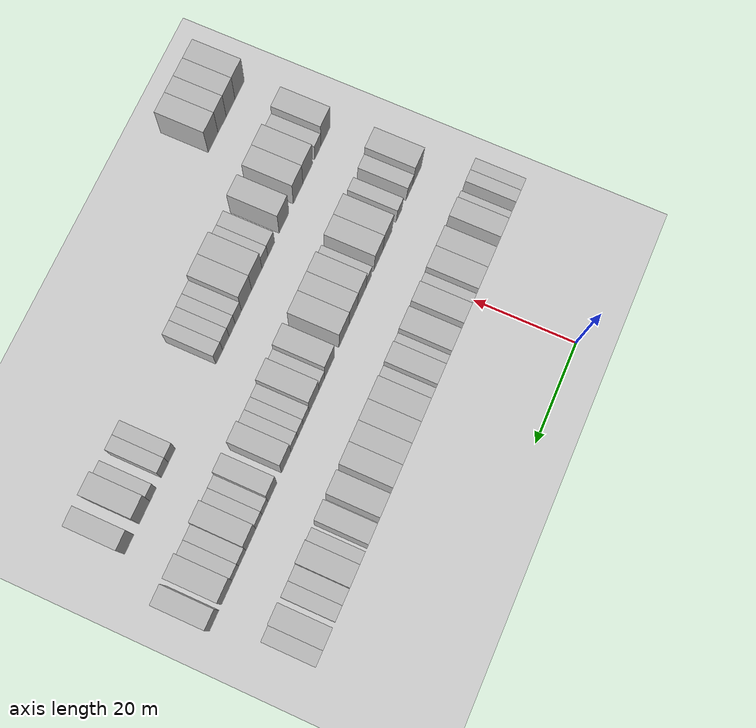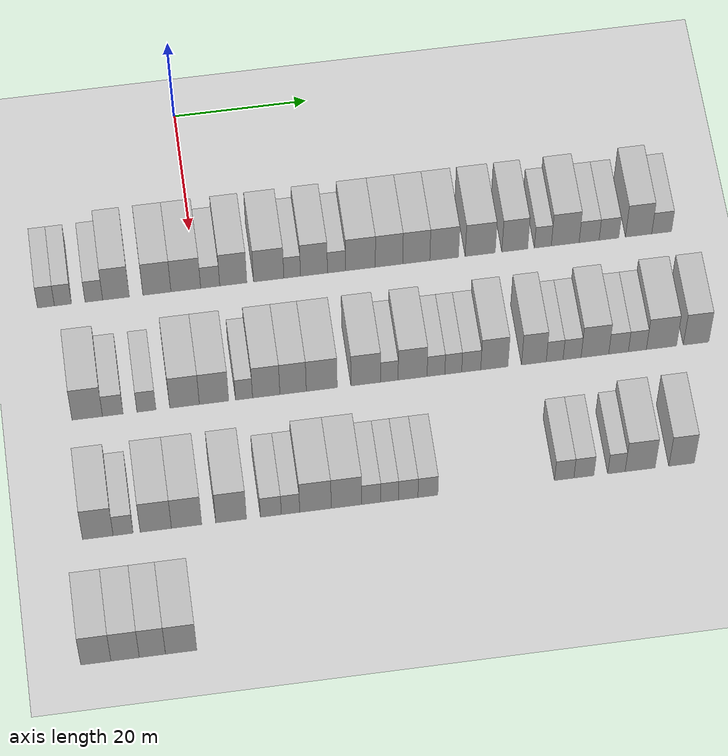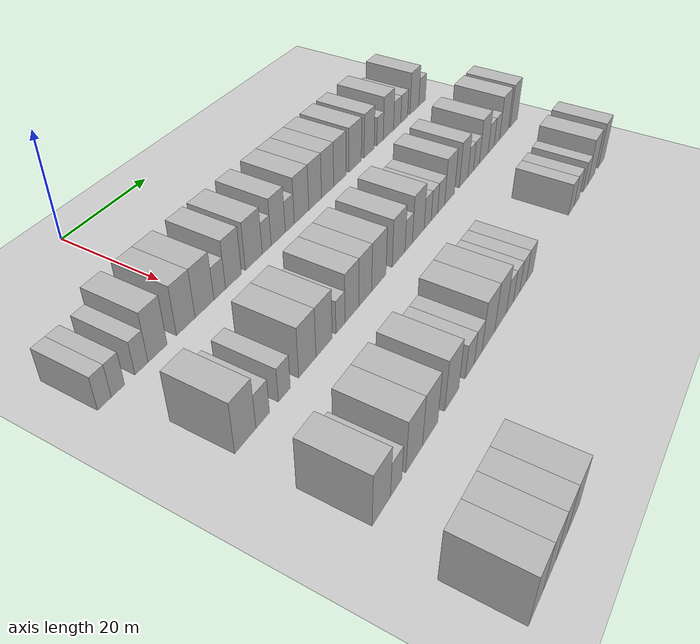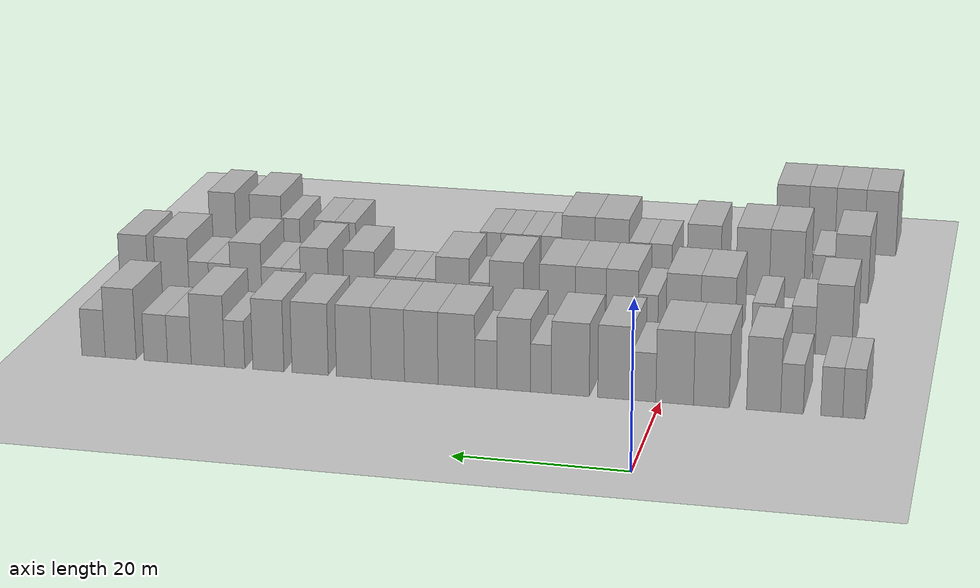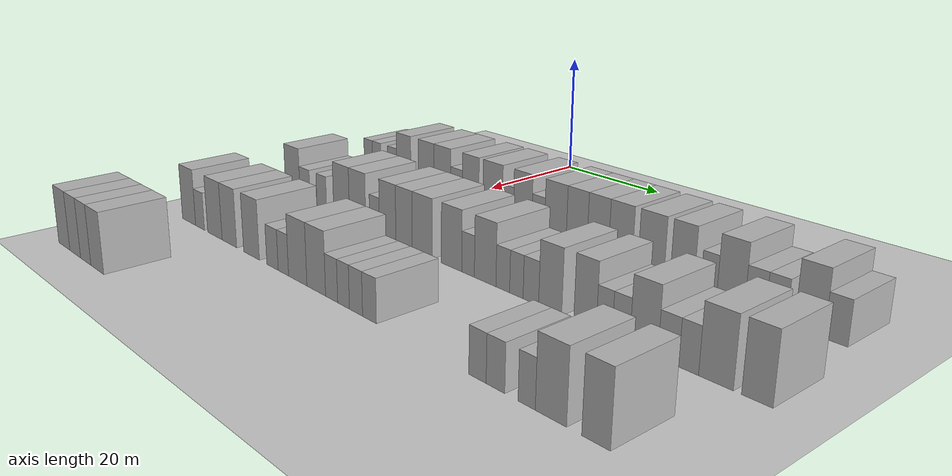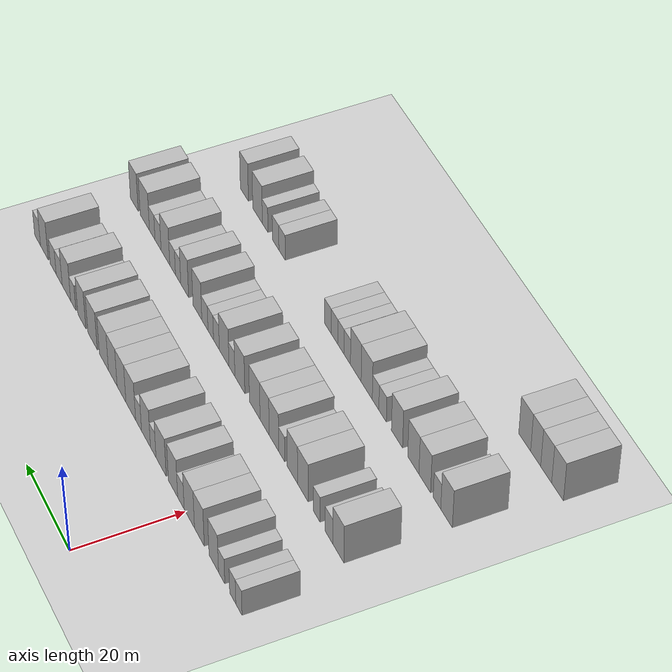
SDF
<sdf version="1.6">
 <world name="default">
  <include><name>ground_plane_1</name><uri>model://HANNAS_ground_plane</uri></include>
  <model name="building_80">
   <static>1</static>
   <pose>25.0000 -22.1949 0 0.000000 0.000000 0.000000</pose>
   <link name="link">
    <pose>0 0 3.00 0 0 0</pose>
    <collision name="collision"><geometry><box><size>10.0000 2.4945 6.0000</size></box></geometry></collision>
    <visual name="visual">
     <cast_shadows>0</cast_shadows>
     <geometry><box><size>10.0000 2.4945 6.0000</size></box></geometry>
     <material>
      <script>
       <uri>model://HANNAS_wall/materials/scripts</uri>
       <uri>model://HANNAS_wall/materials/textures</uri>
       <name>vrc/HANNAS_wall</name>
      </script>
     </material>
    </visual>
   </link>
  </model>
  <model name="building_81">
   <static>1</static>
   <pose>25.0000 -19.7006 0 0.000000 0.000000 0.000000</pose>
   <link name="link">
    <pose>0 0 3.00 0 0 0</pose>
    <collision name="collision"><geometry><box><size>10.0000 2.4941 6.0000</size></box></geometry></collision>
    <visual name="visual">
     <cast_shadows>0</cast_shadows>
     <geometry><box><size>10.0000 2.4941 6.0000</size></box></geometry>
     <material>
      <script>
       <uri>model://HANNAS_wall/materials/scripts</uri>
       <uri>model://HANNAS_wall/materials/textures</uri>
       <name>vrc/HANNAS_wall</name>
      </script>
     </material>
    </visual>
   </link>
  </model>
  <model name="building_82">
   <static>1</static>
   <pose>25.0000 -15.1579 0 0.000000 0.000000 0.000000</pose>
   <link name="link">
    <pose>0 0 3.00 0 0 0</pose>
    <collision name="collision"><geometry><box><size>10.0000 2.5913 6.0000</size></box></geometry></collision>
    <visual name="visual">
     <cast_shadows>0</cast_shadows>
     <geometry><box><size>10.0000 2.5913 6.0000</size></box></geometry>
     <material>
      <script>
       <uri>model://HANNAS_wall/materials/scripts</uri>
       <uri>model://HANNAS_wall/materials/textures</uri>
       <name>vrc/HANNAS_wall</name>
      </script>
     </material>
    </visual>
   </link>
  </model>
  <model name="building_83">
   <static>1</static>
   <pose>25.0000 -11.9035 0 0.000000 0.000000 0.000000</pose>
   <link name="link">
    <pose>0 0 4.50 0 0 0</pose>
    <collision name="collision"><geometry><box><size>10.0000 3.9176 9.0000</size></box></geometry></collision>
    <visual name="visual">
     <cast_shadows>0</cast_shadows>
     <geometry><box><size>10.0000 3.9176 9.0000</size></box></geometry>
     <material>
      <script>
       <uri>model://HANNAS_wall/materials/scripts</uri>
       <uri>model://HANNAS_wall/materials/textures</uri>
       <name>vrc/HANNAS_wall</name>
      </script>
     </material>
    </visual>
   </link>
  </model>
  <model name="building_84">
   <static>1</static>
   <pose>25.0000 -5.8807 0 0.000000 0.000000 0.000000</pose>
   <link name="link">
    <pose>0 0 4.50 0 0 0</pose>
    <collision name="collision"><geometry><box><size>10.0000 4.1279 9.0000</size></box></geometry></collision>
    <visual name="visual">
     <cast_shadows>0</cast_shadows>
     <geometry><box><size>10.0000 4.1279 9.0000</size></box></geometry>
     <material>
      <script>
       <uri>model://HANNAS_wall/materials/scripts</uri>
       <uri>model://HANNAS_wall/materials/textures</uri>
       <name>vrc/HANNAS_wall</name>
      </script>
     </material>
    </visual>
   </link>
  </model>
  <model name="building_85">
   <static>1</static>
   <pose>25.0000 -1.6255 0 0.000000 0.000000 0.000000</pose>
   <link name="link">
    <pose>0 0 4.50 0 0 0</pose>
    <collision name="collision"><geometry><box><size>10.0000 4.3826 9.0000</size></box></geometry></collision>
    <visual name="visual">
     <cast_shadows>0</cast_shadows>
     <geometry><box><size>10.0000 4.3826 9.0000</size></box></geometry>
     <material>
      <script>
       <uri>model://HANNAS_wall/materials/scripts</uri>
       <uri>model://HANNAS_wall/materials/textures</uri>
       <name>vrc/HANNAS_wall</name>
      </script>
     </material>
    </visual>
   </link>
  </model>
  <model name="building_86">
   <static>1</static>
   <pose>25.0000 1.9750 0 0.000000 0.000000 0.000000</pose>
   <link name="link">
    <pose>0 0 3.00 0 0 0</pose>
    <collision name="collision"><geometry><box><size>10.0000 2.8184 6.0000</size></box></geometry></collision>
    <visual name="visual">
     <cast_shadows>0</cast_shadows>
     <geometry><box><size>10.0000 2.8184 6.0000</size></box></geometry>
     <material>
      <script>
       <uri>model://HANNAS_wall/materials/scripts</uri>
       <uri>model://HANNAS_wall/materials/textures</uri>
       <name>vrc/HANNAS_wall</name>
      </script>
     </material>
    </visual>
   </link>
  </model>
  <model name="building_87">
   <static>1</static>
   <pose>25.0000 5.3856 0 0.000000 0.000000 0.000000</pose>
   <link name="link">
    <pose>0 0 4.50 0 0 0</pose>
    <collision name="collision"><geometry><box><size>10.0000 4.0027 9.0000</size></box></geometry></collision>
    <visual name="visual">
     <cast_shadows>0</cast_shadows>
     <geometry><box><size>10.0000 4.0027 9.0000</size></box></geometry>
     <material>
      <script>
       <uri>model://HANNAS_wall/materials/scripts</uri>
       <uri>model://HANNAS_wall/materials/textures</uri>
       <name>vrc/HANNAS_wall</name>
      </script>
     </material>
    </visual>
   </link>
  </model>
  <model name="building_88">
   <static>1</static>
   <pose>25.0000 10.6264 0 0.000000 0.000000 0.000000</pose>
   <link name="link">
    <pose>0 0 4.50 0 0 0</pose>
    <collision name="collision"><geometry><box><size>10.0000 4.4790 9.0000</size></box></geometry></collision>
    <visual name="visual">
     <cast_shadows>0</cast_shadows>
     <geometry><box><size>10.0000 4.4790 9.0000</size></box></geometry>
     <material>
      <script>
       <uri>model://HANNAS_wall/materials/scripts</uri>
       <uri>model://HANNAS_wall/materials/textures</uri>
       <name>vrc/HANNAS_wall</name>
      </script>
     </material>
    </visual>
   </link>
  </model>
  <model name="building_89">
   <static>1</static>
   <pose>25.0000 14.0957 0 0.000000 0.000000 0.000000</pose>
   <link name="link">
    <pose>0 0 3.00 0 0 0</pose>
    <collision name="collision"><geometry><box><size>10.0000 2.4597 6.0000</size></box></geometry></collision>
    <visual name="visual">
     <cast_shadows>0</cast_shadows>
     <geometry><box><size>10.0000 2.4597 6.0000</size></box></geometry>
     <material>
      <script>
       <uri>model://HANNAS_wall/materials/scripts</uri>
       <uri>model://HANNAS_wall/materials/textures</uri>
       <name>vrc/HANNAS_wall</name>
      </script>
     </material>
    </visual>
   </link>
  </model>
  <model name="building_90">
   <static>1</static>
   <pose>25.0000 17.3226 0 0.000000 0.000000 0.000000</pose>
   <link name="link">
    <pose>0 0 4.50 0 0 0</pose>
    <collision name="collision"><geometry><box><size>10.0000 3.9941 9.0000</size></box></geometry></collision>
    <visual name="visual">
     <cast_shadows>0</cast_shadows>
     <geometry><box><size>10.0000 3.9941 9.0000</size></box></geometry>
     <material>
      <script>
       <uri>model://HANNAS_wall/materials/scripts</uri>
       <uri>model://HANNAS_wall/materials/textures</uri>
       <name>vrc/HANNAS_wall</name>
      </script>
     </material>
    </visual>
   </link>
  </model>
  <model name="building_91">
   <static>1</static>
   <pose>25.0000 20.6604 0 0.000000 0.000000 0.000000</pose>
   <link name="link">
    <pose>0 0 3.00 0 0 0</pose>
    <collision name="collision"><geometry><box><size>10.0000 2.6816 6.0000</size></box></geometry></collision>
    <visual name="visual">
     <cast_shadows>0</cast_shadows>
     <geometry><box><size>10.0000 2.6816 6.0000</size></box></geometry>
     <material>
      <script>
       <uri>model://HANNAS_wall/materials/scripts</uri>
       <uri>model://HANNAS_wall/materials/textures</uri>
       <name>vrc/HANNAS_wall</name>
      </script>
     </material>
    </visual>
   </link>
  </model>
  <model name="building_92">
   <static>1</static>
   <pose>25.0000 24.2157 0 0.000000 0.000000 0.000000</pose>
   <link name="link">
    <pose>0 0 4.50 0 0 0</pose>
    <collision name="collision"><geometry><box><size>10.0000 4.4291 9.0000</size></box></geometry></collision>
    <visual name="visual">
     <cast_shadows>0</cast_shadows>
     <geometry><box><size>10.0000 4.4291 9.0000</size></box></geometry>
     <material>
      <script>
       <uri>model://HANNAS_wall/materials/scripts</uri>
       <uri>model://HANNAS_wall/materials/textures</uri>
       <name>vrc/HANNAS_wall</name>
      </script>
     </material>
    </visual>
   </link>
  </model>
  <model name="building_93">
   <static>1</static>
   <pose>25.0000 28.4661 0 0.000000 0.000000 0.000000</pose>
   <link name="link">
    <pose>0 0 4.50 0 0 0</pose>
    <collision name="collision"><geometry><box><size>10.0000 4.0716 9.0000</size></box></geometry></collision>
    <visual name="visual">
     <cast_shadows>0</cast_shadows>
     <geometry><box><size>10.0000 4.0716 9.0000</size></box></geometry>
     <material>
      <script>
       <uri>model://HANNAS_wall/materials/scripts</uri>
       <uri>model://HANNAS_wall/materials/textures</uri>
       <name>vrc/HANNAS_wall</name>
      </script>
     </material>
    </visual>
   </link>
  </model>
  <model name="building_94">
   <static>1</static>
   <pose>25.0000 32.5150 0 0.000000 0.000000 0.000000</pose>
   <link name="link">
    <pose>0 0 4.50 0 0 0</pose>
    <collision name="collision"><geometry><box><size>10.0000 4.0262 9.0000</size></box></geometry></collision>
    <visual name="visual">
     <cast_shadows>0</cast_shadows>
     <geometry><box><size>10.0000 4.0262 9.0000</size></box></geometry>
     <material>
      <script>
       <uri>model://HANNAS_wall/materials/scripts</uri>
       <uri>model://HANNAS_wall/materials/textures</uri>
       <name>vrc/HANNAS_wall</name>
      </script>
     </material>
    </visual>
   </link>
  </model>
  <model name="building_95">
   <static>1</static>
   <pose>25.0000 36.6616 0 0.000000 0.000000 0.000000</pose>
   <link name="link">
    <pose>0 0 4.50 0 0 0</pose>
    <collision name="collision"><geometry><box><size>10.0000 4.2671 9.0000</size></box></geometry></collision>
    <visual name="visual">
     <cast_shadows>0</cast_shadows>
     <geometry><box><size>10.0000 4.2671 9.0000</size></box></geometry>
     <material>
      <script>
       <uri>model://HANNAS_wall/materials/scripts</uri>
       <uri>model://HANNAS_wall/materials/textures</uri>
       <name>vrc/HANNAS_wall</name>
      </script>
     </material>
    </visual>
   </link>
  </model>
  <model name="building_96">
   <static>1</static>
   <pose>25.0000 42.0311 0 0.000000 0.000000 0.000000</pose>
   <link name="link">
    <pose>0 0 4.50 0 0 0</pose>
    <collision name="collision"><geometry><box><size>10.0000 4.4719 9.0000</size></box></geometry></collision>
    <visual name="visual">
     <cast_shadows>0</cast_shadows>
     <geometry><box><size>10.0000 4.4719 9.0000</size></box></geometry>
     <material>
      <script>
       <uri>model://HANNAS_wall/materials/scripts</uri>
       <uri>model://HANNAS_wall/materials/textures</uri>
       <name>vrc/HANNAS_wall</name>
      </script>
     </material>
    </visual>
   </link>
  </model>
  <model name="building_97">
   <static>1</static>
   <pose>25.0000 47.1933 0 0.000000 0.000000 0.000000</pose>
   <link name="link">
    <pose>0 0 4.50 0 0 0</pose>
    <collision name="collision"><geometry><box><size>10.0000 3.8524 9.0000</size></box></geometry></collision>
    <visual name="visual">
     <cast_shadows>0</cast_shadows>
     <geometry><box><size>10.0000 3.8524 9.0000</size></box></geometry>
     <material>
      <script>
       <uri>model://HANNAS_wall/materials/scripts</uri>
       <uri>model://HANNAS_wall/materials/textures</uri>
       <name>vrc/HANNAS_wall</name>
      </script>
     </material>
    </visual>
   </link>
  </model>
  <model name="building_98">
   <static>1</static>
   <pose>25.0000 51.3858 0 0.000000 0.000000 0.000000</pose>
   <link name="link">
    <pose>0 0 3.00 0 0 0</pose>
    <collision name="collision"><geometry><box><size>10.0000 2.5326 6.0000</size></box></geometry></collision>
    <visual name="visual">
     <cast_shadows>0</cast_shadows>
     <geometry><box><size>10.0000 2.5326 6.0000</size></box></geometry>
     <material>
      <script>
       <uri>model://HANNAS_wall/materials/scripts</uri>
       <uri>model://HANNAS_wall/materials/textures</uri>
       <name>vrc/HANNAS_wall</name>
      </script>
     </material>
    </visual>
   </link>
  </model>
  <model name="building_99">
   <static>1</static>
   <pose>25.0000 54.7364 0 0.000000 0.000000 0.000000</pose>
   <link name="link">
    <pose>0 0 4.50 0 0 0</pose>
    <collision name="collision"><geometry><box><size>10.0000 4.1685 9.0000</size></box></geometry></collision>
    <visual name="visual">
     <cast_shadows>0</cast_shadows>
     <geometry><box><size>10.0000 4.1685 9.0000</size></box></geometry>
     <material>
      <script>
       <uri>model://HANNAS_wall/materials/scripts</uri>
       <uri>model://HANNAS_wall/materials/textures</uri>
       <name>vrc/HANNAS_wall</name>
      </script>
     </material>
    </visual>
   </link>
  </model>
  <model name="building_100">
   <static>1</static>
   <pose>25.0000 58.3189 0 0.000000 0.000000 0.000000</pose>
   <link name="link">
    <pose>0 0 3.00 0 0 0</pose>
    <collision name="collision"><geometry><box><size>10.0000 2.9965 6.0000</size></box></geometry></collision>
    <visual name="visual">
     <cast_shadows>0</cast_shadows>
     <geometry><box><size>10.0000 2.9965 6.0000</size></box></geometry>
     <material>
      <script>
       <uri>model://HANNAS_wall/materials/scripts</uri>
       <uri>model://HANNAS_wall/materials/textures</uri>
       <name>vrc/HANNAS_wall</name>
      </script>
     </material>
    </visual>
   </link>
  </model>
  <model name="building_101">
   <static>1</static>
   <pose>25.0000 61.2905 0 0.000000 0.000000 0.000000</pose>
   <link name="link">
    <pose>0 0 3.00 0 0 0</pose>
    <collision name="collision"><geometry><box><size>10.0000 2.9468 6.0000</size></box></geometry></collision>
    <visual name="visual">
     <cast_shadows>0</cast_shadows>
     <geometry><box><size>10.0000 2.9468 6.0000</size></box></geometry>
     <material>
      <script>
       <uri>model://HANNAS_wall/materials/scripts</uri>
       <uri>model://HANNAS_wall/materials/textures</uri>
       <name>vrc/HANNAS_wall</name>
      </script>
     </material>
    </visual>
   </link>
  </model>
  <model name="building_102">
   <static>1</static>
   <pose>25.0000 65.7381 0 0.000000 0.000000 0.000000</pose>
   <link name="link">
    <pose>0 0 4.50 0 0 0</pose>
    <collision name="collision"><geometry><box><size>10.0000 3.9484 9.0000</size></box></geometry></collision>
    <visual name="visual">
     <cast_shadows>0</cast_shadows>
     <geometry><box><size>10.0000 3.9484 9.0000</size></box></geometry>
     <material>
      <script>
       <uri>model://HANNAS_wall/materials/scripts</uri>
       <uri>model://HANNAS_wall/materials/textures</uri>
       <name>vrc/HANNAS_wall</name>
      </script>
     </material>
    </visual>
   </link>
  </model>
  <model name="building_103">
   <static>1</static>
   <pose>25.0000 69.1969 0 0.000000 0.000000 0.000000</pose>
   <link name="link">
    <pose>0 0 3.00 0 0 0</pose>
    <collision name="collision"><geometry><box><size>10.0000 2.9692 6.0000</size></box></geometry></collision>
    <visual name="visual">
     <cast_shadows>0</cast_shadows>
     <geometry><box><size>10.0000 2.9692 6.0000</size></box></geometry>
     <material>
      <script>
       <uri>model://HANNAS_wall/materials/scripts</uri>
       <uri>model://HANNAS_wall/materials/textures</uri>
       <name>vrc/HANNAS_wall</name>
      </script>
     </material>
    </visual>
   </link>
  </model>
  <model name="building_252">
   <static>1</static>
   <pose>44.0000 -18.0150 0 0.000000 0.000000 0.000000</pose>
   <link name="link">
    <pose>0 0 4.50 0 0 0</pose>
    <collision name="collision"><geometry><box><size>10.0000 4.3998 9.0000</size></box></geometry></collision>
    <visual name="visual">
     <cast_shadows>0</cast_shadows>
     <geometry><box><size>10.0000 4.3998 9.0000</size></box></geometry>
     <material>
      <script>
       <uri>model://HANNAS_wall/materials/scripts</uri>
       <uri>model://HANNAS_wall/materials/textures</uri>
       <name>vrc/HANNAS_wall</name>
      </script>
     </material>
    </visual>
   </link>
  </model>
  <model name="building_253">
   <static>1</static>
   <pose>44.0000 -14.3287 0 0.000000 0.000000 0.000000</pose>
   <link name="link">
    <pose>0 0 3.00 0 0 0</pose>
    <collision name="collision"><geometry><box><size>10.0000 2.9728 6.0000</size></box></geometry></collision>
    <visual name="visual">
     <cast_shadows>0</cast_shadows>
     <geometry><box><size>10.0000 2.9728 6.0000</size></box></geometry>
     <material>
      <script>
       <uri>model://HANNAS_wall/materials/scripts</uri>
       <uri>model://HANNAS_wall/materials/textures</uri>
       <name>vrc/HANNAS_wall</name>
      </script>
     </material>
    </visual>
   </link>
  </model>
  <model name="building_254">
   <static>1</static>
   <pose>44.0000 -9.4655 0 0.000000 0.000000 0.000000</pose>
   <link name="link">
    <pose>0 0 3.00 0 0 0</pose>
    <collision name="collision"><geometry><box><size>10.0000 2.7535 6.0000</size></box></geometry></collision>
    <visual name="visual">
     <cast_shadows>0</cast_shadows>
     <geometry><box><size>10.0000 2.7535 6.0000</size></box></geometry>
     <material>
      <script>
       <uri>model://HANNAS_wall/materials/scripts</uri>
       <uri>model://HANNAS_wall/materials/textures</uri>
       <name>vrc/HANNAS_wall</name>
      </script>
     </material>
    </visual>
   </link>
  </model>
  <model name="building_255">
   <static>1</static>
   <pose>44.0000 -3.9467 0 0.000000 0.000000 0.000000</pose>
   <link name="link">
    <pose>0 0 4.50 0 0 0</pose>
    <collision name="collision"><geometry><box><size>10.0000 4.2841 9.0000</size></box></geometry></collision>
    <visual name="visual">
     <cast_shadows>0</cast_shadows>
     <geometry><box><size>10.0000 4.2841 9.0000</size></box></geometry>
     <material>
      <script>
       <uri>model://HANNAS_wall/materials/scripts</uri>
       <uri>model://HANNAS_wall/materials/textures</uri>
       <name>vrc/HANNAS_wall</name>
      </script>
     </material>
    </visual>
   </link>
  </model>
  <model name="building_256">
   <static>1</static>
   <pose>44.0000 0.3203 0 0.000000 0.000000 0.000000</pose>
   <link name="link">
    <pose>0 0 4.50 0 0 0</pose>
    <collision name="collision"><geometry><box><size>10.0000 4.2499 9.0000</size></box></geometry></collision>
    <visual name="visual">
     <cast_shadows>0</cast_shadows>
     <geometry><box><size>10.0000 4.2499 9.0000</size></box></geometry>
     <material>
      <script>
       <uri>model://HANNAS_wall/materials/scripts</uri>
       <uri>model://HANNAS_wall/materials/textures</uri>
       <name>vrc/HANNAS_wall</name>
      </script>
     </material>
    </visual>
   </link>
  </model>
  <model name="building_257">
   <static>1</static>
   <pose>44.0000 4.6780 0 0.000000 0.000000 0.000000</pose>
   <link name="link">
    <pose>0 0 3.00 0 0 0</pose>
    <collision name="collision"><geometry><box><size>10.0000 2.4655 6.0000</size></box></geometry></collision>
    <visual name="visual">
     <cast_shadows>0</cast_shadows>
     <geometry><box><size>10.0000 2.4655 6.0000</size></box></geometry>
     <material>
      <script>
       <uri>model://HANNAS_wall/materials/scripts</uri>
       <uri>model://HANNAS_wall/materials/textures</uri>
       <name>vrc/HANNAS_wall</name>
      </script>
     </material>
    </visual>
   </link>
  </model>
  <model name="building_258">
   <static>1</static>
   <pose>44.0000 7.8958 0 0.000000 0.000000 0.000000</pose>
   <link name="link">
    <pose>0 0 4.50 0 0 0</pose>
    <collision name="collision"><geometry><box><size>10.0000 3.9700 9.0000</size></box></geometry></collision>
    <visual name="visual">
     <cast_shadows>0</cast_shadows>
     <geometry><box><size>10.0000 3.9700 9.0000</size></box></geometry>
     <material>
      <script>
       <uri>model://HANNAS_wall/materials/scripts</uri>
       <uri>model://HANNAS_wall/materials/textures</uri>
       <name>vrc/HANNAS_wall</name>
      </script>
     </material>
    </visual>
   </link>
  </model>
  <model name="building_259">
   <static>1</static>
   <pose>44.0000 11.8018 0 0.000000 0.000000 0.000000</pose>
   <link name="link">
    <pose>0 0 4.50 0 0 0</pose>
    <collision name="collision"><geometry><box><size>10.0000 3.8419 9.0000</size></box></geometry></collision>
    <visual name="visual">
     <cast_shadows>0</cast_shadows>
     <geometry><box><size>10.0000 3.8419 9.0000</size></box></geometry>
     <material>
      <script>
       <uri>model://HANNAS_wall/materials/scripts</uri>
       <uri>model://HANNAS_wall/materials/textures</uri>
       <name>vrc/HANNAS_wall</name>
      </script>
     </material>
    </visual>
   </link>
  </model>
  <model name="building_260">
   <static>1</static>
   <pose>44.0000 15.9686 0 0.000000 0.000000 0.000000</pose>
   <link name="link">
    <pose>0 0 4.50 0 0 0</pose>
    <collision name="collision"><geometry><box><size>10.0000 4.4917 9.0000</size></box></geometry></collision>
    <visual name="visual">
     <cast_shadows>0</cast_shadows>
     <geometry><box><size>10.0000 4.4917 9.0000</size></box></geometry>
     <material>
      <script>
       <uri>model://HANNAS_wall/materials/scripts</uri>
       <uri>model://HANNAS_wall/materials/textures</uri>
       <name>vrc/HANNAS_wall</name>
      </script>
     </material>
    </visual>
   </link>
  </model>
  <model name="building_261">
   <static>1</static>
   <pose>44.0000 22.3629 0 0.000000 0.000000 0.000000</pose>
   <link name="link">
    <pose>0 0 4.50 0 0 0</pose>
    <collision name="collision"><geometry><box><size>10.0000 4.2969 9.0000</size></box></geometry></collision>
    <visual name="visual">
     <cast_shadows>0</cast_shadows>
     <geometry><box><size>10.0000 4.2969 9.0000</size></box></geometry>
     <material>
      <script>
       <uri>model://HANNAS_wall/materials/scripts</uri>
       <uri>model://HANNAS_wall/materials/textures</uri>
       <name>vrc/HANNAS_wall</name>
      </script>
     </material>
    </visual>
   </link>
  </model>
  <model name="building_262">
   <static>1</static>
   <pose>44.0000 25.8017 0 0.000000 0.000000 0.000000</pose>
   <link name="link">
    <pose>0 0 3.00 0 0 0</pose>
    <collision name="collision"><geometry><box><size>10.0000 2.5808 6.0000</size></box></geometry></collision>
    <visual name="visual">
     <cast_shadows>0</cast_shadows>
     <geometry><box><size>10.0000 2.5808 6.0000</size></box></geometry>
     <material>
      <script>
       <uri>model://HANNAS_wall/materials/scripts</uri>
       <uri>model://HANNAS_wall/materials/textures</uri>
       <name>vrc/HANNAS_wall</name>
      </script>
     </material>
    </visual>
   </link>
  </model>
  <model name="building_263">
   <static>1</static>
   <pose>44.0000 29.2100 0 0.000000 0.000000 0.000000</pose>
   <link name="link">
    <pose>0 0 4.50 0 0 0</pose>
    <collision name="collision"><geometry><box><size>10.0000 4.2358 9.0000</size></box></geometry></collision>
    <visual name="visual">
     <cast_shadows>0</cast_shadows>
     <geometry><box><size>10.0000 4.2358 9.0000</size></box></geometry>
     <material>
      <script>
       <uri>model://HANNAS_wall/materials/scripts</uri>
       <uri>model://HANNAS_wall/materials/textures</uri>
       <name>vrc/HANNAS_wall</name>
      </script>
     </material>
    </visual>
   </link>
  </model>
  <model name="building_264">
   <static>1</static>
   <pose>44.0000 32.6251 0 0.000000 0.000000 0.000000</pose>
   <link name="link">
    <pose>0 0 3.00 0 0 0</pose>
    <collision name="collision"><geometry><box><size>10.0000 2.5943 6.0000</size></box></geometry></collision>
    <visual name="visual">
     <cast_shadows>0</cast_shadows>
     <geometry><box><size>10.0000 2.5943 6.0000</size></box></geometry>
     <material>
      <script>
       <uri>model://HANNAS_wall/materials/scripts</uri>
       <uri>model://HANNAS_wall/materials/textures</uri>
       <name>vrc/HANNAS_wall</name>
      </script>
     </material>
    </visual>
   </link>
  </model>
  <model name="building_265">
   <static>1</static>
   <pose>44.0000 35.1582 0 0.000000 0.000000 0.000000</pose>
   <link name="link">
    <pose>0 0 3.00 0 0 0</pose>
    <collision name="collision"><geometry><box><size>10.0000 2.4719 6.0000</size></box></geometry></collision>
    <visual name="visual">
     <cast_shadows>0</cast_shadows>
     <geometry><box><size>10.0000 2.4719 6.0000</size></box></geometry>
     <material>
      <script>
       <uri>model://HANNAS_wall/materials/scripts</uri>
       <uri>model://HANNAS_wall/materials/textures</uri>
       <name>vrc/HANNAS_wall</name>
      </script>
     </material>
    </visual>
   </link>
  </model>
  <model name="building_266">
   <static>1</static>
   <pose>44.0000 37.7846 0 0.000000 0.000000 0.000000</pose>
   <link name="link">
    <pose>0 0 3.00 0 0 0</pose>
    <collision name="collision"><geometry><box><size>10.0000 2.7810 6.0000</size></box></geometry></collision>
    <visual name="visual">
     <cast_shadows>0</cast_shadows>
     <geometry><box><size>10.0000 2.7810 6.0000</size></box></geometry>
     <material>
      <script>
       <uri>model://HANNAS_wall/materials/scripts</uri>
       <uri>model://HANNAS_wall/materials/textures</uri>
       <name>vrc/HANNAS_wall</name>
      </script>
     </material>
    </visual>
   </link>
  </model>
  <model name="building_267">
   <static>1</static>
   <pose>44.0000 41.1670 0 0.000000 0.000000 0.000000</pose>
   <link name="link">
    <pose>0 0 4.50 0 0 0</pose>
    <collision name="collision"><geometry><box><size>10.0000 3.9839 9.0000</size></box></geometry></collision>
    <visual name="visual">
     <cast_shadows>0</cast_shadows>
     <geometry><box><size>10.0000 3.9839 9.0000</size></box></geometry>
     <material>
      <script>
       <uri>model://HANNAS_wall/materials/scripts</uri>
       <uri>model://HANNAS_wall/materials/textures</uri>
       <name>vrc/HANNAS_wall</name>
      </script>
     </material>
    </visual>
   </link>
  </model>
  <model name="building_268">
   <static>1</static>
   <pose>44.0000 46.9710 0 0.000000 0.000000 0.000000</pose>
   <link name="link">
    <pose>0 0 4.50 0 0 0</pose>
    <collision name="collision"><geometry><box><size>10.0000 3.6241 9.0000</size></box></geometry></collision>
    <visual name="visual">
     <cast_shadows>0</cast_shadows>
     <geometry><box><size>10.0000 3.6241 9.0000</size></box></geometry>
     <material>
      <script>
       <uri>model://HANNAS_wall/materials/scripts</uri>
       <uri>model://HANNAS_wall/materials/textures</uri>
       <name>vrc/HANNAS_wall</name>
      </script>
     </material>
    </visual>
   </link>
  </model>
  <model name="building_269">
   <static>1</static>
   <pose>44.0000 50.0210 0 0.000000 0.000000 0.000000</pose>
   <link name="link">
    <pose>0 0 3.00 0 0 0</pose>
    <collision name="collision"><geometry><box><size>10.0000 2.4760 6.0000</size></box></geometry></collision>
    <visual name="visual">
     <cast_shadows>0</cast_shadows>
     <geometry><box><size>10.0000 2.4760 6.0000</size></box></geometry>
     <material>
      <script>
       <uri>model://HANNAS_wall/materials/scripts</uri>
       <uri>model://HANNAS_wall/materials/textures</uri>
       <name>vrc/HANNAS_wall</name>
      </script>
     </material>
    </visual>
   </link>
  </model>
  <model name="building_270">
   <static>1</static>
   <pose>44.0000 52.5815 0 0.000000 0.000000 0.000000</pose>
   <link name="link">
    <pose>0 0 3.00 0 0 0</pose>
    <collision name="collision"><geometry><box><size>10.0000 2.6448 6.0000</size></box></geometry></collision>
    <visual name="visual">
     <cast_shadows>0</cast_shadows>
     <geometry><box><size>10.0000 2.6448 6.0000</size></box></geometry>
     <material>
      <script>
       <uri>model://HANNAS_wall/materials/scripts</uri>
       <uri>model://HANNAS_wall/materials/textures</uri>
       <name>vrc/HANNAS_wall</name>
      </script>
     </material>
    </visual>
   </link>
  </model>
  <model name="building_271">
   <static>1</static>
   <pose>44.0000 55.9416 0 0.000000 0.000000 0.000000</pose>
   <link name="link">
    <pose>0 0 4.50 0 0 0</pose>
    <collision name="collision"><geometry><box><size>10.0000 4.0754 9.0000</size></box></geometry></collision>
    <visual name="visual">
     <cast_shadows>0</cast_shadows>
     <geometry><box><size>10.0000 4.0754 9.0000</size></box></geometry>
     <material>
      <script>
       <uri>model://HANNAS_wall/materials/scripts</uri>
       <uri>model://HANNAS_wall/materials/textures</uri>
       <name>vrc/HANNAS_wall</name>
      </script>
     </material>
    </visual>
   </link>
  </model>
  <model name="building_272">
   <static>1</static>
   <pose>44.0000 59.4231 0 0.000000 0.000000 0.000000</pose>
   <link name="link">
    <pose>0 0 3.00 0 0 0</pose>
    <collision name="collision"><geometry><box><size>10.0000 2.8878 6.0000</size></box></geometry></collision>
    <visual name="visual">
     <cast_shadows>0</cast_shadows>
     <geometry><box><size>10.0000 2.8878 6.0000</size></box></geometry>
     <material>
      <script>
       <uri>model://HANNAS_wall/materials/scripts</uri>
       <uri>model://HANNAS_wall/materials/textures</uri>
       <name>vrc/HANNAS_wall</name>
      </script>
     </material>
    </visual>
   </link>
  </model>
  <model name="building_273">
   <static>1</static>
   <pose>44.0000 62.1952 0 0.000000 0.000000 0.000000</pose>
   <link name="link">
    <pose>0 0 3.00 0 0 0</pose>
    <collision name="collision"><geometry><box><size>10.0000 2.6564 6.0000</size></box></geometry></collision>
    <visual name="visual">
     <cast_shadows>0</cast_shadows>
     <geometry><box><size>10.0000 2.6564 6.0000</size></box></geometry>
     <material>
      <script>
       <uri>model://HANNAS_wall/materials/scripts</uri>
       <uri>model://HANNAS_wall/materials/textures</uri>
       <name>vrc/HANNAS_wall</name>
      </script>
     </material>
    </visual>
   </link>
  </model>
  <model name="building_274">
   <static>1</static>
   <pose>44.0000 65.7457 0 0.000000 0.000000 0.000000</pose>
   <link name="link">
    <pose>0 0 4.50 0 0 0</pose>
    <collision name="collision"><geometry><box><size>10.0000 4.4445 9.0000</size></box></geometry></collision>
    <visual name="visual">
     <cast_shadows>0</cast_shadows>
     <geometry><box><size>10.0000 4.4445 9.0000</size></box></geometry>
     <material>
      <script>
       <uri>model://HANNAS_wall/materials/scripts</uri>
       <uri>model://HANNAS_wall/materials/textures</uri>
       <name>vrc/HANNAS_wall</name>
      </script>
     </material>
    </visual>
   </link>
  </model>
  <model name="building_275">
   <static>1</static>
   <pose>44.0000 70.8506 0 0.000000 0.000000 0.000000</pose>
   <link name="link">
    <pose>0 0 4.50 0 0 0</pose>
    <collision name="collision"><geometry><box><size>10.0000 3.7655 9.0000</size></box></geometry></collision>
    <visual name="visual">
     <cast_shadows>0</cast_shadows>
     <geometry><box><size>10.0000 3.7655 9.0000</size></box></geometry>
     <material>
      <script>
       <uri>model://HANNAS_wall/materials/scripts</uri>
       <uri>model://HANNAS_wall/materials/textures</uri>
       <name>vrc/HANNAS_wall</name>
      </script>
     </material>
    </visual>
   </link>
  </model>
  <model name="building_436">
   <static>1</static>
   <pose>63.0000 -18.3976 0 0.000000 0.000000 0.000000</pose>
   <link name="link">
    <pose>0 0 4.50 0 0 0</pose>
    <collision name="collision"><geometry><box><size>10.0000 4.3386 9.0000</size></box></geometry></collision>
    <visual name="visual">
     <cast_shadows>0</cast_shadows>
     <geometry><box><size>10.0000 4.3386 9.0000</size></box></geometry>
     <material>
      <script>
       <uri>model://HANNAS_wall/materials/scripts</uri>
       <uri>model://HANNAS_wall/materials/textures</uri>
       <name>vrc/HANNAS_wall</name>
      </script>
     </material>
    </visual>
   </link>
  </model>
  <model name="building_437">
   <static>1</static>
   <pose>63.0000 -14.8115 0 0.000000 0.000000 0.000000</pose>
   <link name="link">
    <pose>0 0 3.00 0 0 0</pose>
    <collision name="collision"><geometry><box><size>10.0000 2.8336 6.0000</size></box></geometry></collision>
    <visual name="visual">
     <cast_shadows>0</cast_shadows>
     <geometry><box><size>10.0000 2.8336 6.0000</size></box></geometry>
     <material>
      <script>
       <uri>model://HANNAS_wall/materials/scripts</uri>
       <uri>model://HANNAS_wall/materials/textures</uri>
       <name>vrc/HANNAS_wall</name>
      </script>
     </material>
    </visual>
   </link>
  </model>
  <model name="building_438">
   <static>1</static>
   <pose>63.0000 -10.1738 0 0.000000 0.000000 0.000000</pose>
   <link name="link">
    <pose>0 0 4.50 0 0 0</pose>
    <collision name="collision"><geometry><box><size>10.0000 4.4419 9.0000</size></box></geometry></collision>
    <visual name="visual">
     <cast_shadows>0</cast_shadows>
     <geometry><box><size>10.0000 4.4419 9.0000</size></box></geometry>
     <material>
      <script>
       <uri>model://HANNAS_wall/materials/scripts</uri>
       <uri>model://HANNAS_wall/materials/textures</uri>
       <name>vrc/HANNAS_wall</name>
      </script>
     </material>
    </visual>
   </link>
  </model>
  <model name="building_439">
   <static>1</static>
   <pose>63.0000 -5.8018 0 0.000000 0.000000 0.000000</pose>
   <link name="link">
    <pose>0 0 4.50 0 0 0</pose>
    <collision name="collision"><geometry><box><size>10.0000 4.3022 9.0000</size></box></geometry></collision>
    <visual name="visual">
     <cast_shadows>0</cast_shadows>
     <geometry><box><size>10.0000 4.3022 9.0000</size></box></geometry>
     <material>
      <script>
       <uri>model://HANNAS_wall/materials/scripts</uri>
       <uri>model://HANNAS_wall/materials/textures</uri>
       <name>vrc/HANNAS_wall</name>
      </script>
     </material>
    </visual>
   </link>
  </model>
  <model name="building_440">
   <static>1</static>
   <pose>63.0000 0.5310 0 0.000000 0.000000 0.000000</pose>
   <link name="link">
    <pose>0 0 4.50 0 0 0</pose>
    <collision name="collision"><geometry><box><size>10.0000 4.3633 9.0000</size></box></geometry></collision>
    <visual name="visual">
     <cast_shadows>0</cast_shadows>
     <geometry><box><size>10.0000 4.3633 9.0000</size></box></geometry>
     <material>
      <script>
       <uri>model://HANNAS_wall/materials/scripts</uri>
       <uri>model://HANNAS_wall/materials/textures</uri>
       <name>vrc/HANNAS_wall</name>
      </script>
     </material>
    </visual>
   </link>
  </model>
  <model name="building_441">
   <static>1</static>
   <pose>63.0000 6.2036 0 0.000000 0.000000 0.000000</pose>
   <link name="link">
    <pose>0 0 3.00 0 0 0</pose>
    <collision name="collision"><geometry><box><size>10.0000 2.9820 6.0000</size></box></geometry></collision>
    <visual name="visual">
     <cast_shadows>0</cast_shadows>
     <geometry><box><size>10.0000 2.9820 6.0000</size></box></geometry>
     <material>
      <script>
       <uri>model://HANNAS_wall/materials/scripts</uri>
       <uri>model://HANNAS_wall/materials/textures</uri>
       <name>vrc/HANNAS_wall</name>
      </script>
     </material>
    </visual>
   </link>
  </model>
  <model name="building_442">
   <static>1</static>
   <pose>63.0000 9.0060 0 0.000000 0.000000 0.000000</pose>
   <link name="link">
    <pose>0 0 3.00 0 0 0</pose>
    <collision name="collision"><geometry><box><size>10.0000 2.6228 6.0000</size></box></geometry></collision>
    <visual name="visual">
     <cast_shadows>0</cast_shadows>
     <geometry><box><size>10.0000 2.6228 6.0000</size></box></geometry>
     <material>
      <script>
       <uri>model://HANNAS_wall/materials/scripts</uri>
       <uri>model://HANNAS_wall/materials/textures</uri>
       <name>vrc/HANNAS_wall</name>
      </script>
     </material>
    </visual>
   </link>
  </model>
  <model name="building_443">
   <static>1</static>
   <pose>63.0000 12.5670 0 0.000000 0.000000 0.000000</pose>
   <link name="link">
    <pose>0 0 4.50 0 0 0</pose>
    <collision name="collision"><geometry><box><size>10.0000 4.4991 9.0000</size></box></geometry></collision>
    <visual name="visual">
     <cast_shadows>0</cast_shadows>
     <geometry><box><size>10.0000 4.4991 9.0000</size></box></geometry>
     <material>
      <script>
       <uri>model://HANNAS_wall/materials/scripts</uri>
       <uri>model://HANNAS_wall/materials/textures</uri>
       <name>vrc/HANNAS_wall</name>
      </script>
     </material>
    </visual>
   </link>
  </model>
  <model name="building_444">
   <static>1</static>
   <pose>63.0000 16.9994 0 0.000000 0.000000 0.000000</pose>
   <link name="link">
    <pose>0 0 4.50 0 0 0</pose>
    <collision name="collision"><geometry><box><size>10.0000 4.3657 9.0000</size></box></geometry></collision>
    <visual name="visual">
     <cast_shadows>0</cast_shadows>
     <geometry><box><size>10.0000 4.3657 9.0000</size></box></geometry>
     <material>
      <script>
       <uri>model://HANNAS_wall/materials/scripts</uri>
       <uri>model://HANNAS_wall/materials/textures</uri>
       <name>vrc/HANNAS_wall</name>
      </script>
     </material>
    </visual>
   </link>
  </model>
  <model name="building_445">
   <static>1</static>
   <pose>63.0000 20.5423 0 0.000000 0.000000 0.000000</pose>
   <link name="link">
    <pose>0 0 3.00 0 0 0</pose>
    <collision name="collision"><geometry><box><size>10.0000 2.7200 6.0000</size></box></geometry></collision>
    <visual name="visual">
     <cast_shadows>0</cast_shadows>
     <geometry><box><size>10.0000 2.7200 6.0000</size></box></geometry>
     <material>
      <script>
       <uri>model://HANNAS_wall/materials/scripts</uri>
       <uri>model://HANNAS_wall/materials/textures</uri>
       <name>vrc/HANNAS_wall</name>
      </script>
     </material>
    </visual>
   </link>
  </model>
  <model name="building_446">
   <static>1</static>
   <pose>63.0000 23.1798 0 0.000000 0.000000 0.000000</pose>
   <link name="link">
    <pose>0 0 3.00 0 0 0</pose>
    <collision name="collision"><geometry><box><size>10.0000 2.5550 6.0000</size></box></geometry></collision>
    <visual name="visual">
     <cast_shadows>0</cast_shadows>
     <geometry><box><size>10.0000 2.5550 6.0000</size></box></geometry>
     <material>
      <script>
       <uri>model://HANNAS_wall/materials/scripts</uri>
       <uri>model://HANNAS_wall/materials/textures</uri>
       <name>vrc/HANNAS_wall</name>
      </script>
     </material>
    </visual>
   </link>
  </model>
  <model name="building_447">
   <static>1</static>
   <pose>63.0000 25.8460 0 0.000000 0.000000 0.000000</pose>
   <link name="link">
    <pose>0 0 3.00 0 0 0</pose>
    <collision name="collision"><geometry><box><size>10.0000 2.7776 6.0000</size></box></geometry></collision>
    <visual name="visual">
     <cast_shadows>0</cast_shadows>
     <geometry><box><size>10.0000 2.7776 6.0000</size></box></geometry>
     <material>
      <script>
       <uri>model://HANNAS_wall/materials/scripts</uri>
       <uri>model://HANNAS_wall/materials/textures</uri>
       <name>vrc/HANNAS_wall</name>
      </script>
     </material>
    </visual>
   </link>
  </model>
  <model name="building_448">
   <static>1</static>
   <pose>63.0000 28.6571 0 0.000000 0.000000 0.000000</pose>
   <link name="link">
    <pose>0 0 3.00 0 0 0</pose>
    <collision name="collision"><geometry><box><size>10.0000 2.8447 6.0000</size></box></geometry></collision>
    <visual name="visual">
     <cast_shadows>0</cast_shadows>
     <geometry><box><size>10.0000 2.8447 6.0000</size></box></geometry>
     <material>
      <script>
       <uri>model://HANNAS_wall/materials/scripts</uri>
       <uri>model://HANNAS_wall/materials/textures</uri>
       <name>vrc/HANNAS_wall</name>
      </script>
     </material>
    </visual>
   </link>
  </model>
  <model name="building_449">
   <static>1</static>
   <pose>63.0000 48.2711 0 0.000000 0.000000 0.000000</pose>
   <link name="link">
    <pose>0 0 3.00 0 0 0</pose>
    <collision name="collision"><geometry><box><size>10.0000 2.7944 6.0000</size></box></geometry></collision>
    <visual name="visual">
     <cast_shadows>0</cast_shadows>
     <geometry><box><size>10.0000 2.7944 6.0000</size></box></geometry>
     <material>
      <script>
       <uri>model://HANNAS_wall/materials/scripts</uri>
       <uri>model://HANNAS_wall/materials/textures</uri>
       <name>vrc/HANNAS_wall</name>
      </script>
     </material>
    </visual>
   </link>
  </model>
  <model name="building_450">
   <static>1</static>
   <pose>63.0000 51.1109 0 0.000000 0.000000 0.000000</pose>
   <link name="link">
    <pose>0 0 3.00 0 0 0</pose>
    <collision name="collision"><geometry><box><size>10.0000 2.8853 6.0000</size></box></geometry></collision>
    <visual name="visual">
     <cast_shadows>0</cast_shadows>
     <geometry><box><size>10.0000 2.8853 6.0000</size></box></geometry>
     <material>
      <script>
       <uri>model://HANNAS_wall/materials/scripts</uri>
       <uri>model://HANNAS_wall/materials/textures</uri>
       <name>vrc/HANNAS_wall</name>
      </script>
     </material>
    </visual>
   </link>
  </model>
  <model name="building_451">
   <static>1</static>
   <pose>63.0000 55.8074 0 0.000000 0.000000 0.000000</pose>
   <link name="link">
    <pose>0 0 3.00 0 0 0</pose>
    <collision name="collision"><geometry><box><size>10.0000 2.5078 6.0000</size></box></geometry></collision>
    <visual name="visual">
     <cast_shadows>0</cast_shadows>
     <geometry><box><size>10.0000 2.5078 6.0000</size></box></geometry>
     <material>
      <script>
       <uri>model://HANNAS_wall/materials/scripts</uri>
       <uri>model://HANNAS_wall/materials/textures</uri>
       <name>vrc/HANNAS_wall</name>
      </script>
     </material>
    </visual>
   </link>
  </model>
  <model name="building_452">
   <static>1</static>
   <pose>63.0000 59.2309 0 0.000000 0.000000 0.000000</pose>
   <link name="link">
    <pose>0 0 4.50 0 0 0</pose>
    <collision name="collision"><geometry><box><size>10.0000 4.3391 9.0000</size></box></geometry></collision>
    <visual name="visual">
     <cast_shadows>0</cast_shadows>
     <geometry><box><size>10.0000 4.3391 9.0000</size></box></geometry>
     <material>
      <script>
       <uri>model://HANNAS_wall/materials/scripts</uri>
       <uri>model://HANNAS_wall/materials/textures</uri>
       <name>vrc/HANNAS_wall</name>
      </script>
     </material>
    </visual>
   </link>
  </model>
  <model name="building_453">
   <static>1</static>
   <pose>63.0000 65.2403 0 0.000000 0.000000 0.000000</pose>
   <link name="link">
    <pose>0 0 4.50 0 0 0</pose>
    <collision name="collision"><geometry><box><size>10.0000 3.6797 9.0000</size></box></geometry></collision>
    <visual name="visual">
     <cast_shadows>0</cast_shadows>
     <geometry><box><size>10.0000 3.6797 9.0000</size></box></geometry>
     <material>
      <script>
       <uri>model://HANNAS_wall/materials/scripts</uri>
       <uri>model://HANNAS_wall/materials/textures</uri>
       <name>vrc/HANNAS_wall</name>
      </script>
     </material>
    </visual>
   </link>
  </model>
  <model name="building_596">
   <static>1</static>
   <pose>82.0000 -20.5812 0 0.000000 0.000000 0.000000</pose>
   <link name="link">
    <pose>0 0 4.50 0 0 0</pose>
    <collision name="collision"><geometry><box><size>10.0000 4.1985 9.0000</size></box></geometry></collision>
    <visual name="visual">
     <cast_shadows>0</cast_shadows>
     <geometry><box><size>10.0000 4.1985 9.0000</size></box></geometry>
     <material>
      <script>
       <uri>model://HANNAS_wall/materials/scripts</uri>
       <uri>model://HANNAS_wall/materials/textures</uri>
       <name>vrc/HANNAS_wall</name>
      </script>
     </material>
    </visual>
   </link>
  </model>
  <model name="building_597">
   <static>1</static>
   <pose>82.0000 -16.5096 0 0.000000 0.000000 0.000000</pose>
   <link name="link">
    <pose>0 0 4.50 0 0 0</pose>
    <collision name="collision"><geometry><box><size>10.0000 3.9447 9.0000</size></box></geometry></collision>
    <visual name="visual">
     <cast_shadows>0</cast_shadows>
     <geometry><box><size>10.0000 3.9447 9.0000</size></box></geometry>
     <material>
      <script>
       <uri>model://HANNAS_wall/materials/scripts</uri>
       <uri>model://HANNAS_wall/materials/textures</uri>
       <name>vrc/HANNAS_wall</name>
      </script>
     </material>
    </visual>
   </link>
  </model>
  <model name="building_598">
   <static>1</static>
   <pose>82.0000 -12.7133 0 0.000000 0.000000 0.000000</pose>
   <link name="link">
    <pose>0 0 4.50 0 0 0</pose>
    <collision name="collision"><geometry><box><size>10.0000 3.6478 9.0000</size></box></geometry></collision>
    <visual name="visual">
     <cast_shadows>0</cast_shadows>
     <geometry><box><size>10.0000 3.6478 9.0000</size></box></geometry>
     <material>
      <script>
       <uri>model://HANNAS_wall/materials/scripts</uri>
       <uri>model://HANNAS_wall/materials/textures</uri>
       <name>vrc/HANNAS_wall</name>
      </script>
     </material>
    </visual>
   </link>
  </model>
  <model name="building_599">
   <static>1</static>
   <pose>82.0000 -8.7084 0 0.000000 0.000000 0.000000</pose>
   <link name="link">
    <pose>0 0 4.50 0 0 0</pose>
    <collision name="collision"><geometry><box><size>10.0000 4.3619 9.0000</size></box></geometry></collision>
    <visual name="visual">
     <cast_shadows>0</cast_shadows>
     <geometry><box><size>10.0000 4.3619 9.0000</size></box></geometry>
     <material>
      <script>
       <uri>model://HANNAS_wall/materials/scripts</uri>
       <uri>model://HANNAS_wall/materials/textures</uri>
       <name>vrc/HANNAS_wall</name>
      </script>
     </material>
    </visual>
   </link>
  </model>
 </world>
</sdf>
